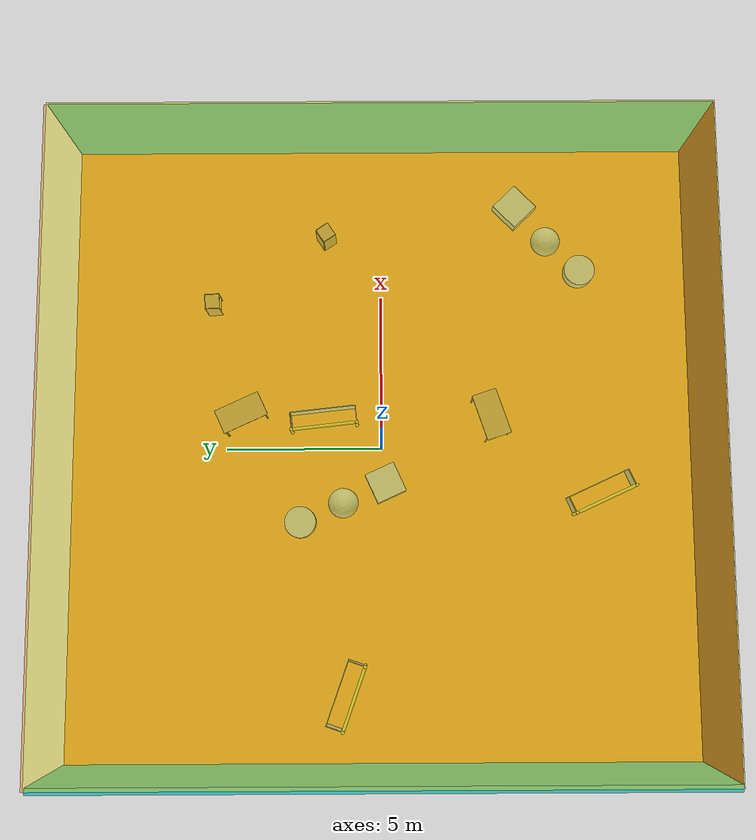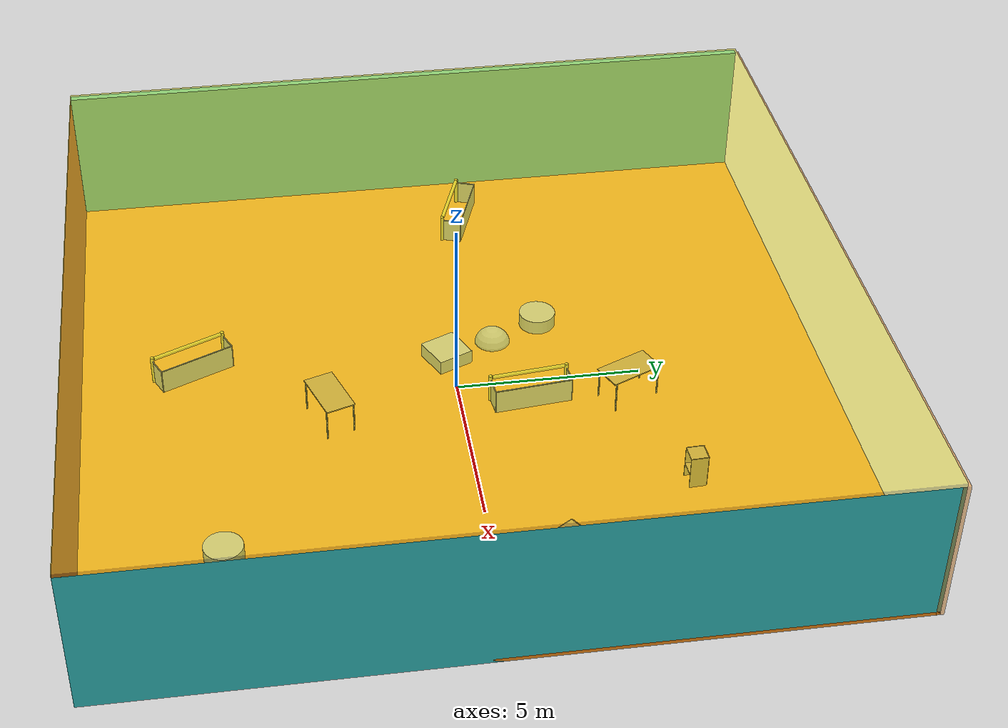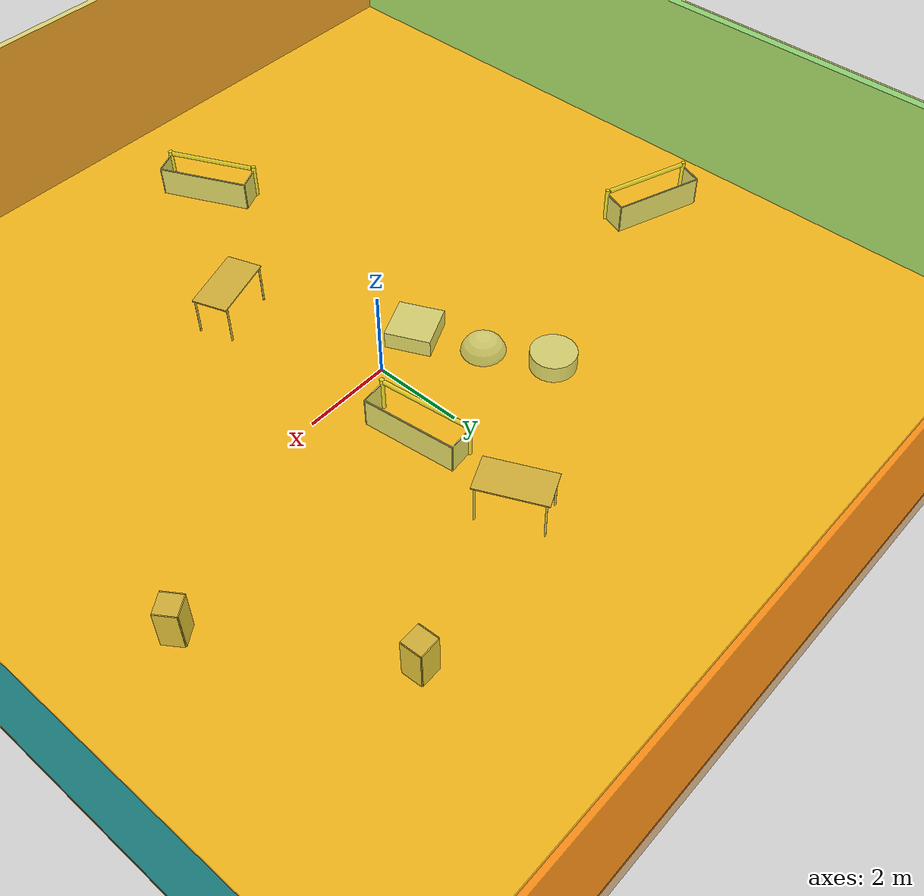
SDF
<sdf version="1.4">
 <world name="default">
  <physics type="ode">
   <max_step_size>0.001</max_step_size>
   <real_time_factor>1</real_time_factor>
   <real_time_update_rate>1000</real_time_update_rate>
   <gravity>0 0 -9.8</gravity>
  </physics>
  <scene><ambient>0.4 0.4 0.4 1</ambient><background>0.7 0.7 0.7 1</background><shadows>1</shadows></scene>
  <model name="Surrounding">
   <static>1</static>
   <link name="Ceiling">
    <collision name="Ceiling_Collision"><geometry><box><size>20 20 0.1</size></box></geometry></collision>
    <visual name="Ceiling_Visual">
     <geometry><box><size>20 20 0.1</size></box></geometry>
     <material>
      <script>
       <uri>file://media/materials/scripts/gazebo.material</uri>
       <name>Gazebo/YellowTransparent</name>
      </script>
     </material>
    </visual>
    <pose>0 0 4.05 0 0 0</pose>
   </link>
   <link name="Wall_South">
    <collision name="Wall_South_Collision">
     <geometry><box><size>20 0 4</size></box></geometry>
     <pose>0 0 2 0 -0 0</pose>
    </collision>
    <visual name="Wall_South_Visual">
     <pose>0 0 2 0 -0 0</pose>
     <geometry><box><size>20 0 4</size></box></geometry>
     <material>
      <script><uri>file://media/materials/scripts/gazebo.material</uri><name>Gazebo/Red</name></script>
     </material>
    </visual>
    <velocity_decay><linear>0</linear><angular>0</angular></velocity_decay>
    <pose>0 -10 0 0 -0 0</pose>
   </link>
   <link name="Wall_East">
    <collision name="Wall_21_Collision">
     <geometry><box><size>20 0 4</size></box></geometry>
     <pose>0 0 2 0 -0 0</pose>
    </collision>
    <visual name="Wall_21_Visual">
     <pose>0 0 2 0 -0 0</pose>
     <geometry><box><size>20 0 4</size></box></geometry>
     <material>
      <script><uri>file://media/materials/scripts/gazebo.material</uri><name>Gazebo/Turquoise</name></script>
     </material>
    </visual>
    <velocity_decay><linear>0</linear><angular>0</angular></velocity_decay>
    <pose>10 0 0 0 -0 1.5708</pose>
   </link>
   <link name="Wall_North">
    <collision name="Wall_22_Collision">
     <geometry><box><size>20 0.2 4</size></box></geometry>
     <pose>0 0 2 0 -0 0</pose>
    </collision>
    <visual name="Wall_22_Visual">
     <pose>0 0 2 0 -0 0</pose>
     <geometry><box><size>20 0.2 4</size></box></geometry>
     <material>
      <script>
       <uri>file://media/materials/scripts/gazebo.material</uri>
       <name>Gazebo/OrangeTransparent</name>
      </script>
     </material>
    </visual>
    <velocity_decay><linear>0</linear><angular>0</angular></velocity_decay>
    <pose>0 10 0 0 -0 0</pose>
   </link>
   <link name="Wall_West">
    <collision name="Wall_23_Collision">
     <geometry><box><size>20 0.2 4</size></box></geometry>
     <pose>0 0 2 0 -0 0</pose>
    </collision>
    <visual name="Wall_23_Visual">
     <pose>0 0 2 0 -0 0</pose>
     <geometry><box><size>20 0.2 4</size></box></geometry>
     <material>
      <script><uri>file://media/materials/scripts/gazebo.material</uri><name>Gazebo/TurquoiseGlow</name></script>
     </material>
    </visual>
    <velocity_decay><linear>0</linear><angular>0</angular></velocity_decay>
    <pose>-10 0 0 0 0 -1.5708</pose>
   </link>
   <link name="Ground_link">
    <collision name="collision">
     <pose>0 0 .05 0 -0 0</pose>
     <geometry><box><size>20 20 0.1</size></box></geometry>
    </collision>
    <visual name="visual">
     <pose>0 0 .05 0 -0 0</pose>
     <geometry><box><size>20 20 0.1</size></box></geometry>
     <material>
      <script><uri>file://media/materials/scripts/gazebo.material</uri><name>Gazebo/Orange</name></script>
     </material>
    </visual>
   </link>
   <static>1</static>
  </model>
  <spherical_coordinates>
   <surface_model>EARTH_WGS84</surface_model>
   <latitude_deg>0</latitude_deg>
   <longitude_deg>0</longitude_deg>
   <elevation>0</elevation>
   <heading_deg>0</heading_deg>
  </spherical_coordinates>
  <light name="lightball_0" type="diffuse">
   <diffuse>0.8 0.8 0.8 1</diffuse>
   <specular>0.2 0.2 0.2 1</specular>
   <attenuation>
    <range>100</range>
    <constant>0.7</constant>
    <linear>0.01</linear>
    <quadratic>0.001</quadratic>
   </attenuation>
   <direction>-0.5 0.1 -0.9</direction>
   <pose>4.89792768568 3.20703783442 1.84128876852 0 0 0</pose>
  </light>
  <light name="lightball_1" type="diffuse">
   <diffuse>0.8 0.8 0.8 1</diffuse>
   <specular>0.2 0.2 0.2 1</specular>
   <attenuation>
    <range>100</range>
    <constant>0.7</constant>
    <linear>0.01</linear>
    <quadratic>0.001</quadratic>
   </attenuation>
   <direction>-0.5 0.1 -0.9</direction>
   <pose>4.72117090478 8.69813752222 2.12526297721 0 0 0</pose>
  </light>
  <light name="lightball_2" type="diffuse">
   <diffuse>0.8 0.8 0.8 1</diffuse>
   <specular>0.2 0.2 0.2 1</specular>
   <attenuation>
    <range>100</range>
    <constant>0.7</constant>
    <linear>0.01</linear>
    <quadratic>0.001</quadratic>
   </attenuation>
   <direction>-0.5 0.1 -0.9</direction>
   <pose>0.973374656327 3.20099911447 3.72896634262 0 0 0</pose>
  </light>
  <light name="lightball_3" type="diffuse">
   <diffuse>0.8 0.8 0.8 1</diffuse>
   <specular>0.2 0.2 0.2 1</specular>
   <attenuation>
    <range>100</range>
    <constant>0.7</constant>
    <linear>0.01</linear>
    <quadratic>0.001</quadratic>
   </attenuation>
   <direction>-0.5 0.1 -0.9</direction>
   <pose>3.49322349232 -5.97587744693 1.38981421074 0 0 0</pose>
  </light>
  <light name="lightball_4" type="diffuse">
   <diffuse>0.8 0.8 0.8 1</diffuse>
   <specular>0.2 0.2 0.2 1</specular>
   <attenuation>
    <range>100</range>
    <constant>0.7</constant>
    <linear>0.01</linear>
    <quadratic>0.001</quadratic>
   </attenuation>
   <direction>-0.5 0.1 -0.9</direction>
   <pose>-4.66679917441 -3.07198559767 1.07119613828 0 0 0</pose>
  </light>
  <light name="lightball_5" type="diffuse">
   <diffuse>0.8 0.8 0.8 1</diffuse>
   <specular>0.2 0.2 0.2 1</specular>
   <attenuation>
    <range>100</range>
    <constant>0.7</constant>
    <linear>0.01</linear>
    <quadratic>0.001</quadratic>
   </attenuation>
   <direction>-0.5 0.1 -0.9</direction>
   <pose>-1.04182743219 -1.47638099196 1.51328030193 0 0 0</pose>
  </light>
  <light name="lightball_6" type="diffuse">
   <diffuse>0.8 0.8 0.8 1</diffuse>
   <specular>0.2 0.2 0.2 1</specular>
   <attenuation>
    <range>100</range>
    <constant>0.7</constant>
    <linear>0.01</linear>
    <quadratic>0.001</quadratic>
   </attenuation>
   <direction>-0.5 0.1 -0.9</direction>
   <pose>-7.03299401004 -0.453792274989 3.38891832087 0 0 0</pose>
  </light>
  <light name="lightball_7" type="diffuse">
   <diffuse>0.8 0.8 0.8 1</diffuse>
   <specular>0.2 0.2 0.2 1</specular>
   <attenuation>
    <range>100</range>
    <constant>0.7</constant>
    <linear>0.01</linear>
    <quadratic>0.001</quadratic>
   </attenuation>
   <direction>-0.5 0.1 -0.9</direction>
   <pose>-6.1199550227 -1.32440845859 1.47275638072 0 0 0</pose>
  </light>
  <include>
   <uri>model://robocup_3Dsim_goal</uri>
   <pose>-7.86793661401 0.89482362017 0 0 0 1.23222400091</pose>
  </include>
  <include>
   <uri>model://robocup_3Dsim_goal</uri>
   <pose>-1.70494474307 -7.1038826619 0 0 0 0.430329800432</pose>
  </include>
  <include>
   <uri>model://textured_shapes</uri>
   <pose>-1.74920050053 1.24659160947 0 0 0 0.428474925662</pose>
  </include>
  <include><uri>model://table</uri><pose>0.987772832768 -3.4897413631 0 0 0 0.327608754017</pose></include>
  <include>
   <uri>model://robocup_3Dsim_goal</uri>
   <pose>0.666477065593 1.83709467415 0 0 0 0.109154943534</pose>
  </include>
  <include><uri>model://table</uri><pose>1.07760773373 4.46443672694 0 0 0 1.99917286971</pose></include>
  <include><uri>model://cabinet</uri><pose>4.69429824112 5.42506996279 0 0 0 1.6154686476</pose></include>
  <include>
   <uri>model://textured_shapes</uri>
   <pose>6.89897189477 -5.44897946469 0 0 0 2.33817465908</pose>
  </include>
  <include><uri>model://cabinet</uri><pose>6.95834296859 1.7835841391 0 0 0 2.16142379907</pose></include>
 </world>
</sdf>

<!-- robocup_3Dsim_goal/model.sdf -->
<sdf version="1.5">
  <model name="robocup_3d_goal">
    <static>true</static>
    <link name="left_post">
      <pose>0 1.05 0.45 0 0 0</pose>
      <collision name="collision">
        <geometry>
          <cylinder>
            <radius>0.05</radius>
            <length>0.9</length>
          </cylinder>
        </geometry>
      </collision>
      <visual name="visual">
        <geometry>
          <cylinder>
            <radius>0.05</radius>
            <length>0.9</length>
          </cylinder>
        </geometry>
        <material>
          <script>
            <uri>file://media/materials/scripts/gazebo.material</uri>
            <name>Gazebo/ZincYellow</name>
          </script>
        </material>
      </visual>
    </link>
    <link name="left_support_horiz_lower">
      <pose>0.30 1.05 0.01 0 0 0</pose>
      <collision name="collision">
        <geometry>
          <box>
            <size>0.50 0.02 0.02</size>
          </box>
        </geometry>
      </collision>
      <visual name="visual">
        <geometry>
          <box>
            <size>0.50 0.02 0.02</size>
          </box>
        </geometry>
        <material>
          <script>
            <uri>file://media/materials/scripts/gazebo.material</uri>
            <name>Gazebo/White</name>
          </script>
        </material>
      </visual>
    </link>
    <link name="left_support_horiz_upper">
      <pose>0.30 1.05 0.79 0 0 0</pose>
      <collision name="collision">
        <geometry>
          <box>
            <size>0.50 0.02 0.02</size>
          </box>
        </geometry>
      </collision>
      <visual name="visual">
        <geometry>
          <box>
            <size>0.50 0.02 0.02</size>
          </box>
        </geometry>
        <material>
          <script>
            <uri>file://media/materials/scripts/gazebo.material</uri>
            <name>Gazebo/White</name>
          </script>
        </material>
      </visual>
    </link>
    <link name="left_support_vertical">
      <pose>0.56 1.05 0.4 0 1.5708 0</pose>
      <collision name="collision">
        <geometry>
          <box>
            <size>0.80 0.02 0.02</size>
          </box>
        </geometry>
      </collision>
      <visual name="visual">
        <geometry>
          <box>
            <size>0.80 0.02 0.02</size>
          </box>
        </geometry>
        <material>
          <script>
            <uri>file://media/materials/scripts/gazebo.material</uri>
            <name>Gazebo/White</name>
          </script>
        </material>
      </visual>
    </link>
    <link name="right_support_horiz_lower">
      <pose>0.30 -1.05 0.01 0 0 0</pose>
      <collision name="collision">
        <geometry>
          <box>
            <size>0.50 0.02 0.02</size>
          </box>
        </geometry>
      </collision>
      <visual name="visual">
        <geometry>
          <box>
            <size>0.50 0.02 0.02</size>
          </box>
        </geometry>
        <material>
          <script>
            <uri>file://media/materials/scripts/gazebo.material</uri>
            <name>Gazebo/White</name>
          </script>
        </material>
      </visual>
    </link>
    <link name="right_support_horiz_upper">
      <pose>0.30 -1.05 0.79 0 0 0</pose>
      <collision name="collision">
        <geometry>
          <box>
            <size>0.50 0.02 0.02</size>
          </box>
        </geometry>
      </collision>
      <visual name="visual">
        <geometry>
          <box>
            <size>0.50 0.02 0.02</size>
          </box>
        </geometry>
        <material>
          <script>
            <uri>file://media/materials/scripts/gazebo.material</uri>
            <name>Gazebo/White</name>
          </script>
        </material>
      </visual>
    </link>
    <link name="right_support_vertical">
      <pose>0.56 -1.05 0.4 0 1.5708 0</pose>
      <collision name="collision">
        <geometry>
          <box>
            <size>0.80 0.02 0.02</size>
          </box>
        </geometry>
      </collision>
      <visual name="visual">
        <geometry>
          <box>
            <size>0.80 0.02 0.02</size>
          </box>
        </geometry>
        <material>
          <script>
            <uri>file://media/materials/scripts/gazebo.material</uri>
            <name>Gazebo/White</name>
          </script>
        </material>
      </visual>
    </link>
    <link name="center_support_horiz_lower">
      <pose>0.56 0 0.01 0 1.5708 0</pose>
      <collision name="collision">
        <geometry>
          <box>
            <size>0.02 2.08 0.02</size>
          </box>
        </geometry>
      </collision>
      <visual name="visual">
        <geometry>
          <box>
            <size>0.02 2.08 0.02</size>
          </box>
        </geometry>
        <material>
          <script>
            <uri>file://media/materials/scripts/gazebo.material</uri>
            <name>Gazebo/White</name>
          </script>
        </material>
      </visual>
    </link>
    <link name="center_support_horiz_upper">
      <pose>0.56 0 0.79 0 1.5708 0</pose>
      <collision name="collision">
        <geometry>
          <box>
            <size>0.02 2.08 0.02</size>
          </box>
        </geometry>
      </collision>
      <visual name="visual">
        <geometry>
          <box>
            <size>0.02 2.08 0.02</size>
          </box>
        </geometry>
        <material>
          <script>
            <uri>file://media/materials/scripts/gazebo.material</uri>
            <name>Gazebo/White</name>
          </script>
        </material>
      </visual>
    </link>
    <link name="right_post">
      <pose>0 -1.05 0.45 0 0 0</pose>
      <collision name="collision">
        <geometry>
          <cylinder>
            <radius>0.05</radius>
            <length>0.9</length>
          </cylinder>
        </geometry>
      </collision>
      <visual name="visual">
        <geometry>
          <cylinder>
            <radius>0.05</radius>
            <length>0.9</length>
          </cylinder>
        </geometry>
        <material>
          <script>
            <uri>file://media/materials/scripts/gazebo.material</uri>
            <name>Gazebo/ZincYellow</name>
          </script>
        </material>
      </visual>
    </link>
    <link name="crossbar">
      <pose>0 0 0.85 1.57 1.57 0</pose>
      <collision name="collision">
        <geometry>
          <cylinder>
            <radius>0.05</radius>
            <length>2.0</length>
          </cylinder>
        </geometry>
      </collision>
      <visual name="visual">
        <geometry>
          <cylinder>
            <radius>0.05</radius>
            <length>2.0</length>
          </cylinder>
        </geometry>
        <material>
          <script>
            <uri>file://media/materials/scripts/gazebo.material</uri>
            <name>Gazebo/ZincYellow</name>
          </script>
        </material>
      </visual>
    </link>
    <link name="center_net">
      <pose>0.56 0 0.40 0 0 0</pose>
      <collision name="collision">
        <geometry>
          <box>
            <size>0.01 2.1 0.80</size>
          </box>
        </geometry>
      </collision>
      <visual name="visual">
        <geometry>
          <box>
            <size>0.01 2.1 0.80</size>
          </box>
        </geometry>
        <material>
          <script>
            <uri>model://../model_source/models/robocup09_spl_field/materials/scripts/</uri>
            <uri>model://../model_source/models/robocup09_spl_field/materials/textures/</uri>
            <name>RoboCup/Net</name>
          </script>
        </material>
      </visual>
    </link>
    <link name="left_net">
      <pose>0.30 1.05 0.40 0 0 0</pose>
      <collision name="collision">
        <geometry>
          <box>
            <size>0.50 0.01 0.76</size>
          </box>
        </geometry>
      </collision>
      <visual name="visual">
        <geometry>
          <box>
            <size>0.50 0.01 0.76</size>
          </box>
        </geometry>
        <material>
          <script>
            <uri>model://../model_source/models/robocup09_spl_field/materials/scripts/</uri>
            <uri>model://../model_source/models/robocup09_spl_field/materials/textures/</uri>
            <name>RoboCup/Net</name>
          </script>
        </material>
      </visual>
    </link>
    <link name="right_net">
      <pose>0.30 -1.05 0.40 0 0 0</pose>
      <collision name="collision">
        <geometry>
          <box>
            <size>0.50 0.01 0.76</size>
          </box>
        </geometry>
      </collision>
      <visual name="visual">
        <geometry>
          <box>
            <size>0.50 0.01 0.76</size>
          </box>
        </geometry>
        <material>
          <script>
            <uri>model://../model_source/models/robocup09_spl_field/materials/scripts/</uri>
            <uri>model://../model_source/models/robocup09_spl_field/materials/textures/</uri>
            <name>RoboCup/Net</name>
          </script>
        </material>
      </visual>
    </link>
  </model>
</sdf>

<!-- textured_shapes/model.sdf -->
<sdf version="1.6">
  <model name="textured_shapes">
    <pose>0 0 0.5 0 0 0</pose>
    <link name="box">
      <pose>0 -1.5 0 0 0 0</pose>
      <collision name="collision">
        <geometry>
          <box>
            <size>1 1 1</size>
          </box>
        </geometry>
      </collision>
      <visual name="visual">
        <geometry>
          <box>
            <size>1 1 1</size>
          </box>
        </geometry>
        <material>
          <script>
            <uri>model://../model_source/models/textured_shapes/materials/scripts</uri>
            <uri>model://../model_source/models/textured_shapes/materials/textures</uri>
            <name>TexturedShape/Squares</name>
          </script>
        </material>
      </visual>
    </link>
    <link name="sphere">
      <collision name="collision">
        <geometry>
          <sphere>
            <radius>0.5</radius>
          </sphere>
        </geometry>
      </collision>
      <visual name="visual">
        <geometry>
          <sphere>
            <radius>0.5</radius>
          </sphere>
        </geometry>
        <material>
          <script>
            <uri>model://../model_source/models/textured_shapes/materials/scripts</uri>
            <uri>model://../model_source/models/textured_shapes/materials/textures</uri>
            <name>TexturedShape/Squares</name>
          </script>
        </material>
      </visual>
    </link>
    <link name="cylinder">
      <pose>0 1.5 0 0 0 0</pose>
      <collision name="collision">
        <geometry>
          <cylinder>
            <radius>0.5</radius>
            <length>1</length>
          </cylinder>
        </geometry>
      </collision>
      <visual name="visual">
        <geometry>
          <cylinder>
            <radius>0.5</radius>
            <length>1</length>
          </cylinder>
        </geometry>
        <material>
          <script>
            <uri>model://../model_source/models/textured_shapes/materials/scripts</uri>
            <uri>model://../model_source/models/textured_shapes/materials/textures</uri>
            <name>TexturedShape/Squares</name>
          </script>
        </material>
      </visual>
    </link>
  </model>
</sdf>

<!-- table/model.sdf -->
<sdf version="1.5">
  <model name="table">
    <static>true</static>
    <link name="link">
      <collision name="surface">
        <pose>0 0 1.0 0 0 0</pose>
        <geometry>
          <box>
            <size>1.5 0.8 0.03</size>
          </box>
        </geometry>
        <surface>
          <friction>
            <ode>
              <mu>0.6</mu>
              <mu2>0.6</mu2>
            </ode>
          </friction>
        </surface>
      </collision>
      <visual name="visual1">
        <pose>0 0 1.0 0 0 0</pose>
        <geometry>
          <box>
            <size>1.5 0.8 0.03</size>
          </box>
        </geometry>
        <material>
          <script>
            <uri>model://media/materials/scripts/gazebo.material</uri>
            <name>Gazebo/Wood</name>
          </script>
        </material>
      </visual>
      <collision name="front_left_leg">
        <pose>0.68 0.38 0.5 0 0 0</pose>
        <geometry>
          <cylinder>
            <radius>0.02</radius>
            <length>1.0</length>
          </cylinder>
        </geometry>
      </collision>
      <visual name="front_left_leg">
        <pose>0.68 0.38 0.5 0 0 0</pose>
        <geometry>
          <cylinder>
            <radius>0.02</radius>
            <length>1.0</length>
          </cylinder>
        </geometry>
        <material>
          <script>
            <uri>model://media/materials/scripts/gazebo.material</uri>
            <name>Gazebo/Grey</name>
          </script>
        </material>
      </visual>
      <collision name="front_right_leg">
        <pose>0.68 -0.38 0.5 0 0 0</pose>
        <geometry>
          <cylinder>
            <radius>0.02</radius>
            <length>1.0</length>
          </cylinder>
        </geometry>
      </collision>
      <visual name="front_right_leg">
        <pose>0.68 -0.38 0.5 0 0 0</pose>
        <geometry>
          <cylinder>
            <radius>0.02</radius>
            <length>1.0</length>
          </cylinder>
        </geometry>
        <material>
          <script>
            <uri>model://media/materials/scripts/gazebo.material</uri>
            <name>Gazebo/Grey</name>
          </script>
        </material>
      </visual>
      <collision name="back_right_leg">
        <pose>-0.68 -0.38 0.5 0 0 0</pose>
        <geometry>
          <cylinder>
            <radius>0.02</radius>
            <length>1.0</length>
          </cylinder>
        </geometry>
      </collision>
      <visual name="back_right_leg">
        <pose>-0.68 -0.38 0.5 0 0 0</pose>
        <geometry>
          <cylinder>
            <radius>0.02</radius>
            <length>1.0</length>
          </cylinder>
        </geometry>
        <material>
          <script>
            <uri>model://media/materials/scripts/gazebo.material</uri>
            <name>Gazebo/Grey</name>
          </script>
        </material>
      </visual>
      <collision name="back_left_leg">
        <pose>-0.68 0.38 0.5 0 0 0</pose>
        <geometry>
          <cylinder>
            <radius>0.02</radius>
            <length>1.0</length>
          </cylinder>
        </geometry>
      </collision>
      <visual name="back_left_leg">
        <pose>-0.68 0.38 0.5 0 0 0</pose>
        <geometry>
          <cylinder>
            <radius>0.02</radius>
            <length>1.0</length>
          </cylinder>
        </geometry>
        <material>
          <script>
            <uri>model://media/materials/scripts/gazebo.material</uri>
            <name>Gazebo/Grey</name>
          </script>
        </material>
      </visual>
    </link>
  </model>
</sdf>

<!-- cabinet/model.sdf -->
<sdf version="1.5">
  <model name="cabinet">
    <static>true</static>
    <link name="cabinet_bottom_plate">
      <inertial>
        <pose>0 0 -1 0 0 0</pose>
        <inertia>
          <ixx>2.050000</ixx>
          <ixy>0</ixy>
          <ixz>0</ixz>
          <iyy>2.050000</iyy>
          <iyz>0</iyz>
          <izz>2.050000</izz>
        </inertia>
        <mass>25.000000</mass>
      </inertial>
      <collision name="cabinet_bottom_plate_geom">
        <pose>0 0 0.010000 0 0 0</pose>
        <geometry>
          <box>
            <size>0.450000 0.450000 0.020000</size>
          </box>
        </geometry>
      </collision>
      <visual name="cabinet_bottom_plate_geom_visual">
        <pose>0 0 0.010000 0 0 0</pose>
        <geometry>
          <box>
            <size>0.450000 0.450000 0.020000</size>
          </box>
        </geometry>
        <material>
          <script>
            <uri>model://media/materials/scripts/gazebo.material</uri>
            <name>Gazebo/Wood</name>
          </script>
        </material>
      </visual>
      <collision name="cabinet_bottom_plate_geom_cabinet_back_plate">
        <pose>0.235000 0 0.510000 0 0 0</pose>
        <geometry>
          <box>
            <size>0.020000 0.450000 1.020000</size>
          </box>
        </geometry>
      </collision>
      <visual name="cabinet_bottom_plate_geom_cabinet_back_plate_visual">
        <pose>0.235000 0 0.510000 0 0 0</pose>
        <geometry>
          <box>
            <size>0.020000 0.450000 1.020000</size>
          </box>
        </geometry>
        <material>
          <script>
            <uri>model://media/materials/scripts/gazebo.material</uri>
            <name>Gazebo/Wood</name>
          </script>
        </material>
      </visual>
      <collision name="cabinet_bottom_plate_geom_cabinet_left_plate">
        <pose>0 0.235000 0.510000 0 0 0</pose>
        <geometry>
          <box>
            <size>0.450000 0.020000 1.020000</size>
          </box>
        </geometry>
      </collision>
      <visual name="cabinet_bottom_plate_geom_cabinet_left_plate_visual">
        <pose>0 0.235000 0.510000 0 0 0</pose>
        <geometry>
          <box>
            <size>0.450000 0.020000 1.020000</size>
          </box>
        </geometry>
        <material>
          <script>
            <uri>model://media/materials/scripts/gazebo.material</uri>
            <name>Gazebo/Wood</name>
          </script>
        </material>
      </visual>
      <collision name="cabinet_bottom_plate_geom_cabinet_middle_plate">
        <pose>0 0 0.510000 0 0 0</pose>
        <geometry>
          <box>
            <size>0.450000 0.450000 0.020000</size>
          </box>
        </geometry>
      </collision>
      <visual name="cabinet_bottom_plate_geom_cabinet_middle_plate_visual">
        <pose>0 0 0.510000 0 0 0</pose>
        <geometry>
          <box>
            <size>0.450000 0.450000 0.020000</size>
          </box>
        </geometry>
        <material>
          <script>
            <uri>model://media/materials/scripts/gazebo.material</uri>
            <name>Gazebo/Wood</name>
          </script>
        </material>
      </visual>
      <collision name="cabinet_bottom_plate_geom_cabinet_right_plate">
        <pose>0 -0.235000 0.510000 0 0 0</pose>
        <geometry>
          <box>
            <size>0.450000 0.020000 1.020000</size>
          </box>
        </geometry>
      </collision>
      <visual name="cabinet_bottom_plate_geom_cabinet_right_plate_visual">
        <pose>0 -0.235000 0.510000 0 0 0</pose>
        <geometry>
          <box>
            <size>0.450000 0.020000 1.020000</size>
          </box>
        </geometry>
        <material>
          <script>
            <uri>model://media/materials/scripts/gazebo.material</uri>
            <name>Gazebo/Wood</name>
          </script>
        </material>
      </visual>
      <collision name="cabinet_bottom_plate_geom_cabinet_top_plate">
        <pose>0 0 1.010000 0 0 0</pose>
        <geometry>
          <box>
            <size>0.450000 0.450000 0.020000</size>
          </box>
        </geometry>
      </collision>
      <visual name="cabinet_bottom_plate_geom_cabinet_top_plate_visual">
        <pose>0 0 1.010000 0 0 0</pose>
        <geometry>
          <box>
            <size>0.450000 0.450000 0.020000</size>
          </box>
        </geometry>
        <material>
          <script>
            <uri>model://media/materials/scripts/gazebo.material</uri>
            <name>Gazebo/Wood</name>
          </script>
        </material>
      </visual>
    </link>
  </model>
</sdf>
